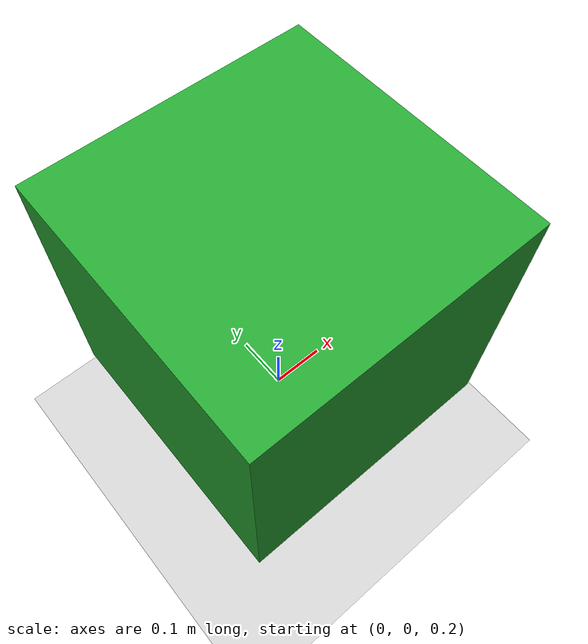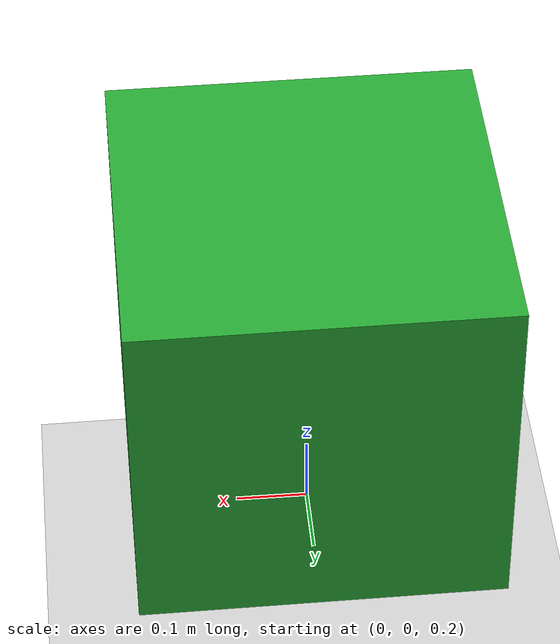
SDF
<?xml version="1.0"?>
<sdf version="1.4">
  <world name="default">
    <include>
      <uri>model://ground_plane</uri>
    </include>

    <include>
      <uri>model://sun</uri>
    </include>
    <plugin name="wirelessSimulator" filename="libwirelessSimulator.so"/>
    <!-- Drone 1 -->

    <model name="drone1">
      <pose>0 0 0.5 0 0 0</pose>
      <static>true</static>
      <link name="link">
        <inertial>
          <pose>0 0 0 0 0 0</pose>
        </inertial>
        <collision name="collision">
          <geometry>
            <box>
              <size>0.5 0.5 0.5</size>
            </box>
          </geometry>
        </collision>

        <visual name="visual">
          <geometry>
            <box>
              <size>0.5 0.5 0.5</size>
            </box>
          </geometry>

          <material>
            <script>
              <uri>file://media/materials/scripts/gazebo.material</uri>
              <name>Gazebo/Green</name>
            </script>
          </material>
        </visual>
      </link>
      <plugin name="meshnetworkCom" filename="libmeshnetworkCom.so"/>
      <plugin name="droneEngine" filename="libdroneEngine.so">
        <DroneID>2</DroneID>
      </plugin>
    </model>

    <!-- Drone 2 -->
    <model name="gateway">
      <pose>0 0 0.5 0 0 0</pose>
       <static>true</static>
      <link name="link">
        <inertial>
          <pose>0 0 0 0 0 0</pose>
          <mass>100</mass>
          <inertia>
            <ixx>3.33341666667e+3</ixx>
            <ixy>0.0</ixy>
            <ixz>0.0</ixz>
            <iyy>3.33341666667e+3</iyy>
            <iyz>0.0</iyz>
            <izz>6.66666666667e+3</izz>
          </inertia>
        </inertial>
        <collision name="collision">
          <geometry>
            <box>
              <size>0.5 0.5 0.5</size>
            </box>
          </geometry>
          <surface>
            <friction>
              <ode>
                <mu>0</mu>
                <mu2>0</mu2>
              </ode>
            </friction>
          </surface>
        </collision>

        <visual name="visual">
          <geometry>
            <box>
              <size>0.5 0.5 0.5</size>
            </box>
          </geometry>
          <material>
            <script>
              <uri>file://media/materials/scripts/gazebo.material</uri>
              <name>Gazebo/Red</name>
            </script>
          </material>
        </visual>
      </link>
      <plugin name="droneEngine" filename="libdroneEngine.so">
        <DroneID>2</DroneID>
      </plugin>
      <plugin name="meshnetworkGateway" filename="libmeshnetworkGateway.so"/>
    </model>

  </world>
</sdf>
